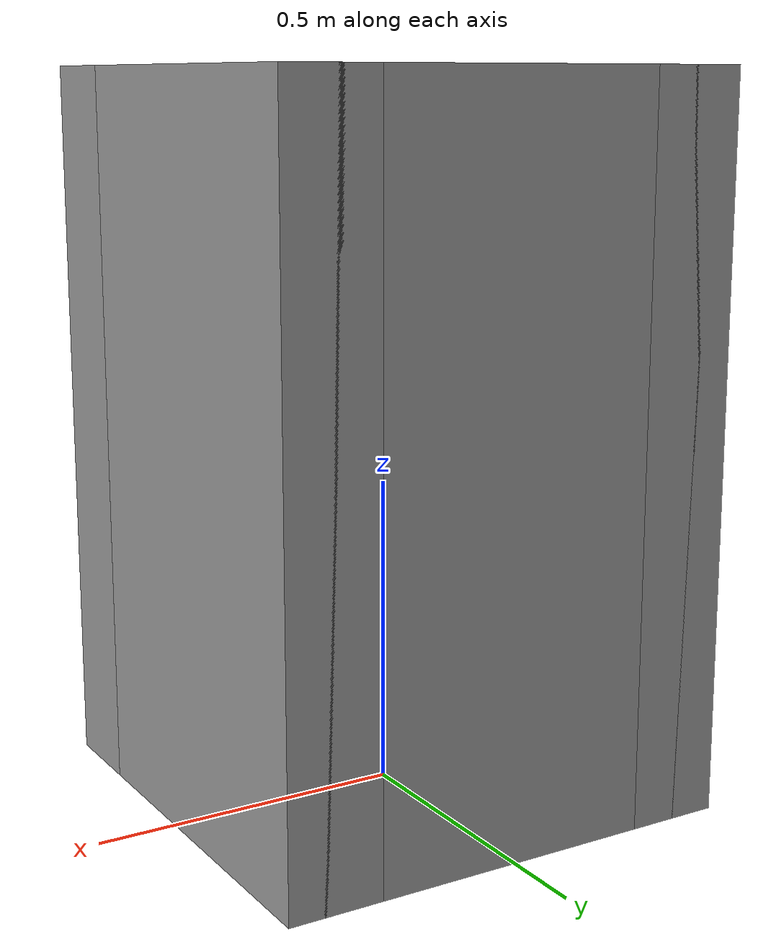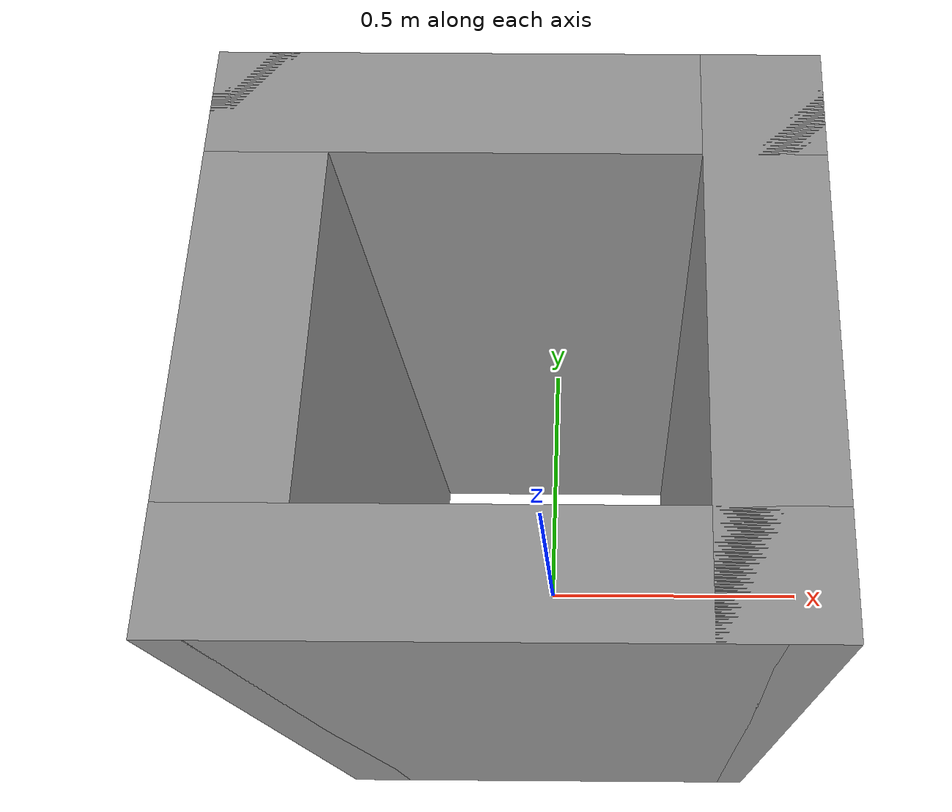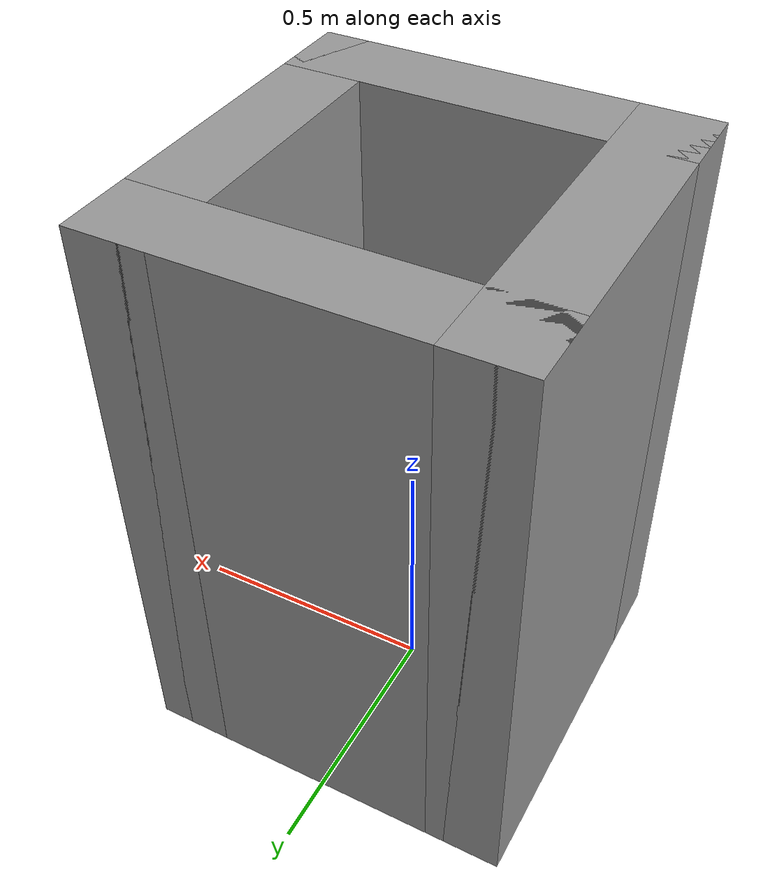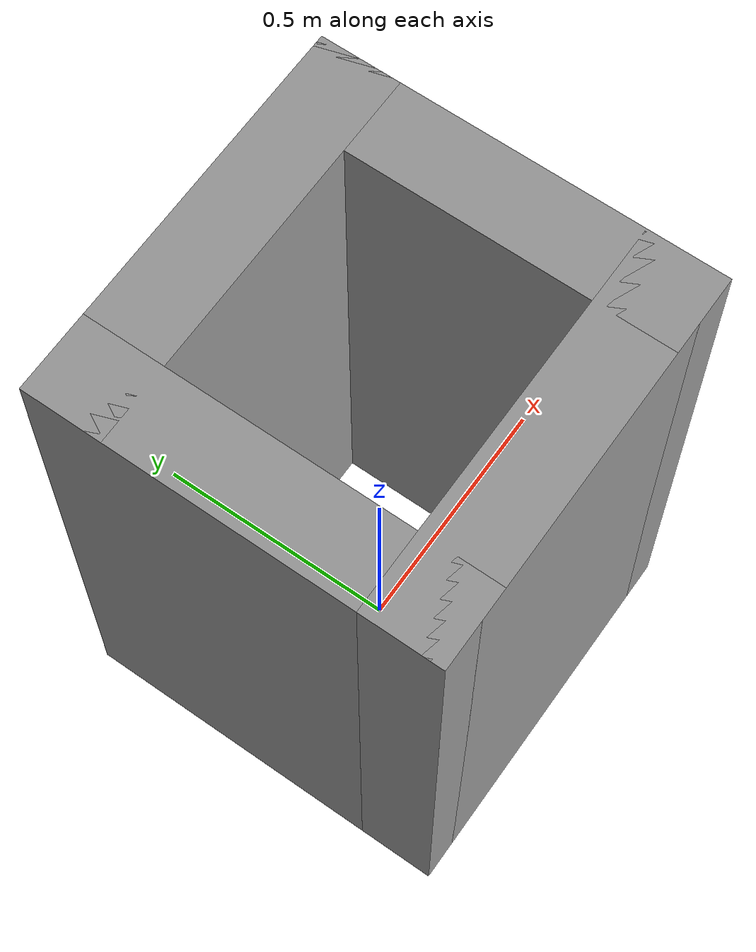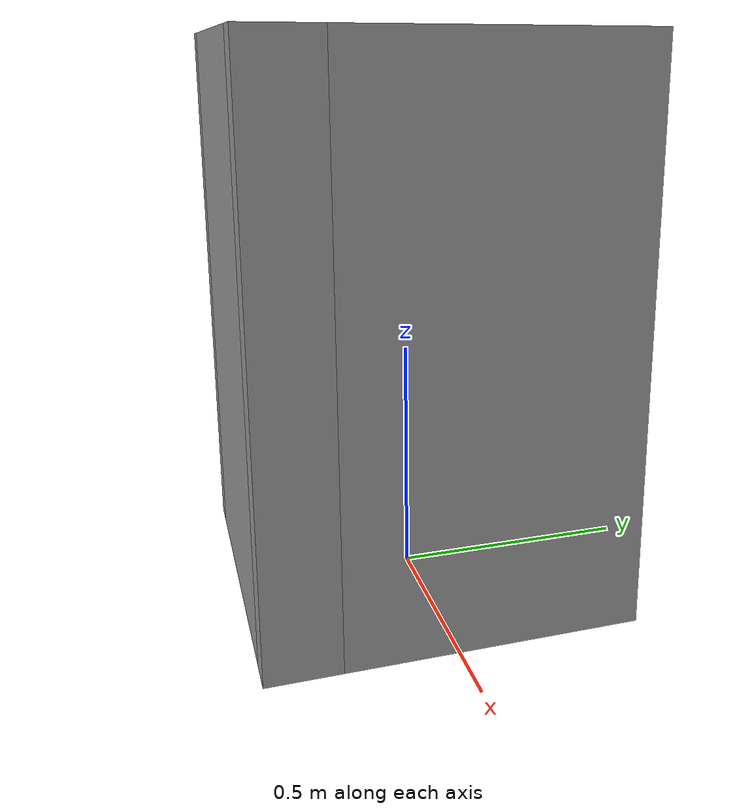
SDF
<?xml version='1.0'?>
<sdf version='1.7'>
  <model name='small_box'>
    <pose>0 0 0 0 -0 0</pose>
    <link name='Wall_0'>
      <collision name='Wall_0_Collision'>
        <geometry>
          <box>
            <size>0.75 0.15 1.15</size>
          </box>
        </geometry>
        <pose>0 0 0.575 0 -0 0</pose>
      </collision>
      <visual name='Wall_0_Visual'>
        <pose>0 0 0.575 0 -0 0</pose>
        <geometry>
          <box>
            <size>0.75 0.15 1.15</size>
          </box>
        </geometry>
        <material>
          <script>
            <uri>file://media/materials/scripts/gazebo.material</uri>
            <name>Gazebo/Grey</name>
          </script>
          <ambient>1 1 1 1</ambient>
        </material>
        <meta>
          <layer>0</layer>
        </meta>
      </visual>
      <pose>0 -0.3 0 0 -0 0</pose>
    </link>
    <link name='Wall_4'>
      <collision name='Wall_4_Collision'>
        <geometry>
          <box>
            <size>0.75 0.15 1.15</size>
          </box>
        </geometry>
        <pose>0 0 0.575 0 -0 0</pose>
      </collision>
      <visual name='Wall_4_Visual'>
        <pose>0 0 0.575 0 -0 0</pose>
        <geometry>
          <box>
            <size>0.75 0.15 1.15</size>
          </box>
        </geometry>
        <material>
          <script>
            <uri>file://media/materials/scripts/gazebo.material</uri>
            <name>Gazebo/Grey</name>
          </script>
          <ambient>1 1 1 1</ambient>
        </material>
        <meta>
          <layer>0</layer>
        </meta>
      </visual>
      <pose>-0.3 0 0 0 -0 1.5708</pose>
    </link>
    <link name='Wall_6'>
      <collision name='Wall_6_Collision'>
        <geometry>
          <box>
            <size>0.75 0.15 1.15</size>
          </box>
        </geometry>
        <pose>0 0 0.575 0 -0 0</pose>
      </collision>
      <visual name='Wall_6_Visual'>
        <pose>0 0 0.575 0 -0 0</pose>
        <geometry>
          <box>
            <size>0.75 0.15 1.15</size>
          </box>
        </geometry>
        <material>
          <script>
            <uri>file://media/materials/scripts/gazebo.material</uri>
            <name>Gazebo/Grey</name>
          </script>
          <ambient>1 1 1 1</ambient>
        </material>
        <meta>
          <layer>0</layer>
        </meta>
      </visual>
      <pose>0 0.3 0 0 -0 0</pose>
    </link>
    <link name='Wall_7'>
      <collision name='Wall_7_Collision'>
        <geometry>
          <box>
            <size>0.75 0.15 1.15</size>
          </box>
        </geometry>
        <pose>0 0 0.575 0 -0 0</pose>
      </collision>
      <visual name='Wall_7_Visual'>
        <pose>0 0 0.575 0 -0 0</pose>
        <geometry>
          <box>
            <size>0.75 0.15 1.15</size>
          </box>
        </geometry>
        <material>
          <script>
            <uri>file://media/materials/scripts/gazebo.material</uri>
            <name>Gazebo/Grey</name>
          </script>
          <ambient>1 1 1 1</ambient>
        </material>
        <meta>
          <layer>0</layer>
        </meta>
      </visual>
      <pose>0.3 0 0 0 -0 -1.5708</pose>
    </link>
    <static>1</static>
  </model>
</sdf>
